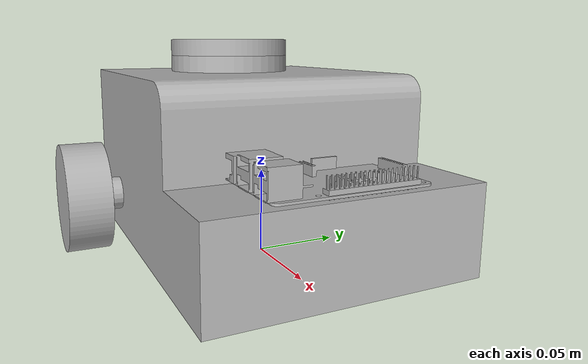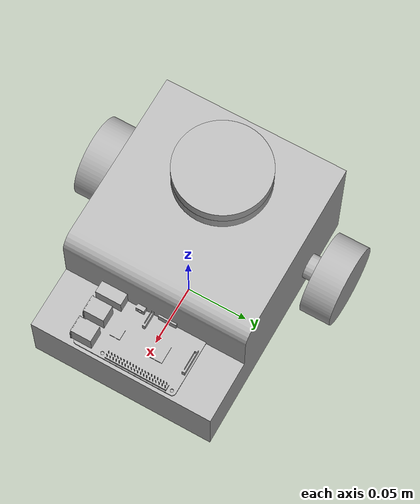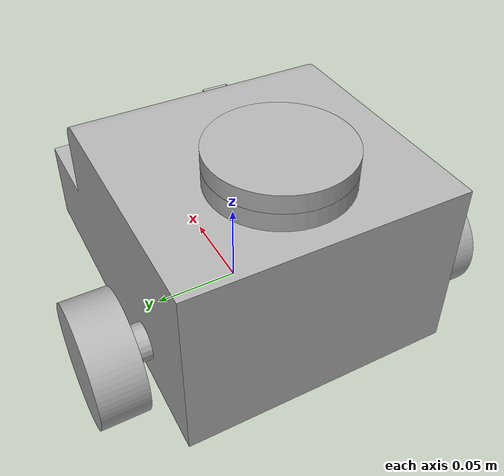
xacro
<?xml version="1.0" ?>
<robot name="rmp_bot" xmlns:xacro="http://www.ros.org/wiki/xacro">

<xacro:include filename="$(find rmp_bot_description)/urdf/materials.xacro" />
<xacro:include filename="$(find rmp_bot_description)/urdf/rmp_bot.trans" />
<xacro:include filename="$(find rmp_bot_description)/urdf/rmp_bot.gazebo" />
<xacro:include filename="$(find rmp_bot_description)/urdf/materials.gazebo" />
<link name="base_link">
  <inertial>
    <origin rpy="0 0 0" xyz="-0.011565744211795657 1.3623184072391812e-17 0.05475149458728916"/>
    <mass value="7.210166673922866"/>
    <inertia ixx="0.019609" ixy="0.0" ixz="0.002465" iyy="0.026676" iyz="0.0" izz="0.033896"/>
  </inertial>
  <visual>
    <origin rpy="0 0 0" xyz="0 0 0"/>
    <geometry>
      <mesh filename="package://rmp_bot_description/meshes/base_link.stl" scale="0.001 0.001 0.001"/>
    </geometry>
    <material name="silver"/>
  </visual>
  <collision>
    <origin rpy="0 0 0" xyz="0 0 0"/>
    <geometry>
      <mesh filename="package://rmp_bot_description/meshes/base_link.stl" scale="0.001 0.001 0.001"/>
    </geometry>
  </collision>
</link>

<link name="r_wheel_1">
  <inertial>
    <origin rpy="0 0 0" xyz="0.0 -0.012499999999999997 0.0"/>
    <mass value="0.11821469543761899"/>
    <inertia ixx="3.7e-05" ixy="0.0" ixz="0.0" iyy="6.2e-05" iyz="0.0" izz="3.7e-05"/>
  </inertial>
  <visual>
    <origin rpy="0 0 0" xyz="0.05 0.085 -0.0325"/>
    <geometry>
      <mesh filename="package://rmp_bot_description/meshes/r_wheel_1.stl" scale="0.001 0.001 0.001"/>
    </geometry>
    <material name="silver"/>
  </visual>
  <collision>
    <origin rpy="0 0 0" xyz="0.05 0.085 -0.0325"/>
    <geometry>
      <mesh filename="package://rmp_bot_description/meshes/r_wheel_1.stl" scale="0.001 0.001 0.001"/>
    </geometry>
  </collision>
</link>

<link name="l_wheel_1">
  <inertial>
    <origin rpy="0 0 0" xyz="0.0 0.012499999999999997 0.0"/>
    <mass value="0.11821469543761899"/>
    <inertia ixx="3.7e-05" ixy="-0.0" ixz="0.0" iyy="6.2e-05" iyz="-0.0" izz="3.7e-05"/>
  </inertial>
  <visual>
    <origin rpy="0 0 0" xyz="0.05 -0.085 -0.0325"/>
    <geometry>
      <mesh filename="package://rmp_bot_description/meshes/l_wheel_1.stl" scale="0.001 0.001 0.001"/>
    </geometry>
    <material name="silver"/>
  </visual>
  <collision>
    <origin rpy="0 0 0" xyz="0.05 -0.085 -0.0325"/>
    <geometry>
      <mesh filename="package://rmp_bot_description/meshes/l_wheel_1.stl" scale="0.001 0.001 0.001"/>
    </geometry>
  </collision>
</link>

<link name="lidar_1">
  <inertial>
    <origin rpy="0 0 0" xyz="0.0 0.0 0.0050000000000000044"/>
    <mass value="0.05248423226903448"/>
    <inertia ixx="1.9e-05" ixy="0.0" ixz="0.0" iyy="1.9e-05" iyz="0.0" izz="3.7e-05"/>
  </inertial>
  <visual>
    <origin rpy="0 0 0" xyz="0.05 -0.0 -0.1175"/>
    <geometry>
      <mesh filename="package://rmp_bot_description/meshes/lidar_1.stl" scale="0.001 0.001 0.001"/>
    </geometry>
    <material name="silver"/>
  </visual>
  <collision>
    <origin rpy="0 0 0" xyz="0.05 -0.0 -0.1175"/>
    <geometry>
      <mesh filename="package://rmp_bot_description/meshes/lidar_1.stl" scale="0.001 0.001 0.001"/>
    </geometry>
  </collision>
</link>

<link name="Pi_1">
  <inertial>
    <origin rpy="0 0 0" xyz="-0.0067540083650862864 -0.01396547251973256 0.005888830680916869"/>
    <mass value="0.13472167579144448"/>
    <inertia ixx="8.3e-05" ixy="0.0" ixz="0.0" iyy="4.1e-05" iyz="9e-06" izz="0.000118"/>
  </inertial>
  <visual>
    <origin rpy="0 0 0" xyz="-0.075 -0.0 -0.0575"/>
    <geometry>
      <mesh filename="package://rmp_bot_description/meshes/Pi_1.stl" scale="0.001 0.001 0.001"/>
    </geometry>
    <material name="silver"/>
  </visual>
  <collision>
    <origin rpy="0 0 0" xyz="-0.075 -0.0 -0.0575"/>
    <geometry>
      <mesh filename="package://rmp_bot_description/meshes/Pi_1.stl" scale="0.001 0.001 0.001"/>
    </geometry>
  </collision>
</link>

<link name="caster_1">
  <inertial>
    <origin rpy="0 0 0" xyz="-0.030000000000000013 -7.821807760306241e-18 -0.002860510183618329"/>
    <mass value="0.04548558261997199"/>
    <inertia ixx="3e-06" ixy="-0.0" ixz="-0.0" iyy="3e-06" iyz="-0.0" izz="7e-06"/>
  </inertial>
  <visual>
    <origin rpy="0 0 0" xyz="-0.1 -0.0 -0.0075"/>
    <geometry>
      <mesh filename="package://rmp_bot_description/meshes/caster_1.stl" scale="0.001 0.001 0.001"/>
    </geometry>
    <material name="silver"/>
  </visual>
  <collision>
    <origin rpy="0 0 0" xyz="-0.1 -0.0 -0.0075"/>
    <geometry>
      <mesh filename="package://rmp_bot_description/meshes/caster_1.stl" scale="0.001 0.001 0.001"/>
    </geometry>
  </collision>
</link>

<joint name="Rev1" type="continuous">
  <origin rpy="0 0 0" xyz="-0.05 -0.085 0.0325"/>
  <parent link="base_link"/>
  <child link="r_wheel_1"/>
  <axis xyz="0.0 1.0 0.0"/>
</joint>

<joint name="Rev2" type="continuous">
  <origin rpy="0 0 0" xyz="-0.05 0.085 0.0325"/>
  <parent link="base_link"/>
  <child link="l_wheel_1"/>
  <axis xyz="0.0 1.0 0.0"/>
</joint>

<joint name="Rigid3" type="fixed">
  <origin rpy="0 0 0" xyz="-0.05 0.0 0.1175"/>
  <parent link="base_link"/>
  <child link="lidar_1"/>
</joint>

<joint name="Rigid4" type="fixed">
  <origin rpy="0 0 0" xyz="0.075 0.0 0.0575"/>
  <parent link="base_link"/>
  <child link="Pi_1"/>
</joint>

<joint name="Rigid5" type="fixed">
  <origin rpy="0 0 0" xyz="0.1 0.0 0.0075"/>
  <parent link="base_link"/>
  <child link="caster_1"/>
</joint>

</robot>

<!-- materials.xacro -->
<robot name="rmp_bot" xmlns:xacro="http://www.ros.org/wiki/xacro" >

<material name="silver">
  <color rgba="0.700 0.700 0.700 1.000"/>
</material>

</robot>

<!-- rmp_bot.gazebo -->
<robot name="rmp_bot" xmlns:xacro="http://www.ros.org/wiki/xacro" >

<xacro:property name="body_color" value="Gazebo/Silver" />

<gazebo>
  <plugin filename="libgazebo_ros_control.so" name="control"/>
</gazebo>
<gazebo reference="base_link">
  <material>${body_color}</material>
  <mu1>0.2</mu1>
  <mu2>0.2</mu2>
  <selfCollide>true</selfCollide>
  <gravity>true</gravity>
</gazebo>

<gazebo reference="r_wheel_1">
  <material>${body_color}</material>
  <mu1>100</mu1>
  <mu2>100</mu2>
  <selfCollide>true</selfCollide>
</gazebo>

<gazebo reference="l_wheel_1">
  <material>${body_color}</material>
  <mu1>100</mu1>
  <mu2>100</mu2>
  <selfCollide>true</selfCollide>
</gazebo>

<gazebo reference="lidar_1">
  <material>${body_color}</material>
  <mu1>0.2</mu1>
  <mu2>0.2</mu2>
  <selfCollide>true</selfCollide>
</gazebo>

<gazebo reference="Pi_1">
  <material>${body_color}</material>
  <mu1>0.2</mu1>
  <mu2>0.2</mu2>
  <selfCollide>true</selfCollide>
</gazebo>

<gazebo reference="caster_1">
  <material>${body_color}</material>
  <mu1>0.2</mu1>
  <mu2>0.2</mu2>
  <selfCollide>true</selfCollide>
</gazebo>

<gazebo>
   <plugin name="differential_drive_controller" filename="libgazebo_ros_diff_drive.so">

    <!-- Plugin update rate in Hz -->
    <updateRate>10</updateRate>

    <!-- Name of left joint, defaults to `left_joint` -->
    <leftJoint>Rev2</leftJoint>

    <!-- Name of right joint, defaults to `right_joint` -->
    <rightJoint>Rev1</rightJoint>

    <!-- The distance from the center of one wheel to the other, in meters, defaults to 0.34 m -->
    <wheelSeparation>0.5380</wheelSeparation>

    <!-- Diameter of the wheels, in meters, defaults to 0.15 m -->
    <wheelDiameter>0.2410</wheelDiameter>

    <!-- Wheel acceleration, in rad/s^2, defaults to 0.0 rad/s^2 -->
    <wheelAcceleration>1.0</wheelAcceleration>

    <!-- Maximum torque which the wheels can produce, in Nm, defaults to 5 Nm -->
    <wheelTorque>20</wheelTorque>

    <!-- Topic to receive geometry_msgs/Twist message commands, defaults to `cmd_vel` -->
    <commandTopic>cmd_vel</commandTopic>

    <!-- Topic to publish nav_msgs/Odometry messages, defaults to `odom` -->
    <odometryTopic>odom</odometryTopic>

    <!-- Odometry frame, defaults to `odom` -->
    <odometryFrame>odom</odometryFrame>

    <!-- Robot frame to calculate odometry from, defaults to `base_footprint` -->
    <robotBaseFrame>base_link</robotBaseFrame>

    <!-- Odometry source, 0 for ENCODER, 1 for WORLD, defaults to WORLD -->
    <odometrySource>1</odometrySource>

    <!-- Set to true to publish transforms for the wheel links, defaults to false -->
    <publishWheelTF>true</publishWheelTF>

    <!-- Set to true to publish transforms for the odometry, defaults to true -->
    <publishOdom>true</publishOdom>

    <!-- Set to true to publish sensor_msgs/JointState on /joint_states for the wheel joints, defaults to false -->
    <publishWheelJointState>true</publishWheelJointState>

    <!-- Set to true to swap right and left wheels, defaults to true -->
    <legacyMode>false</legacyMode>
  </plugin>
</gazebo>

<gazebo reference="lidar_1">
    <sensor type="ray" name="sen_lidar">
      <pose>0 0 0 0 0 0</pose>
      <visualize>false</visualize>
      <update_rate>10</update_rate>
      <ray>
        <scan>
          <horizontal>
            <samples>720</samples>
            <resolution>1</resolution>
            <min_angle>-3.14159</min_angle>
            <max_angle>3.14159</max_angle>
          </horizontal>
        </scan>
        <range>
          <min>0.10</min>
          <max>30.0</max>
          <resolution>0.01</resolution>
        </range>
        <noise>
          <type>gaussian</type>
          <mean>0.0</mean>
          <stddev>0.01</stddev>
        </noise>
      </ray>
      <plugin name="gazebo_ros_head_hokuyo_controller" filename="libgazebo_ros_laser.so">
        <topicName>/scan</topicName>
        <frameName>lidar_1</frameName>
      </plugin>
    </sensor>
  </gazebo>

</robot>

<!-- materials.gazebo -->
<robot name="rmp_bot" xmlns:xacro="http://www.ros.org/wiki/xacro" >

<xacro:property name="body_color" value="Gazebo/Silver" />
<xacro:property name="lidar_color" value="Gazebo/Red" />

<gazebo reference="base_link">
  <material>${body_color}</material>
</gazebo>

<gazebo reference="r_wheel_1">
  <material>${body_color}</material>

</gazebo>

<gazebo reference="l_wheel_1">
  <material>${body_color}</material>

</gazebo>

<gazebo reference="lidar_1">
  <material>${lidar_color}</material>

</gazebo>

<gazebo reference="Pi_1">
  <material>${body_color}</material>

</gazebo>

<gazebo reference="caster_1">
  <material>${body_color}</material>

</gazebo>

</robot>
